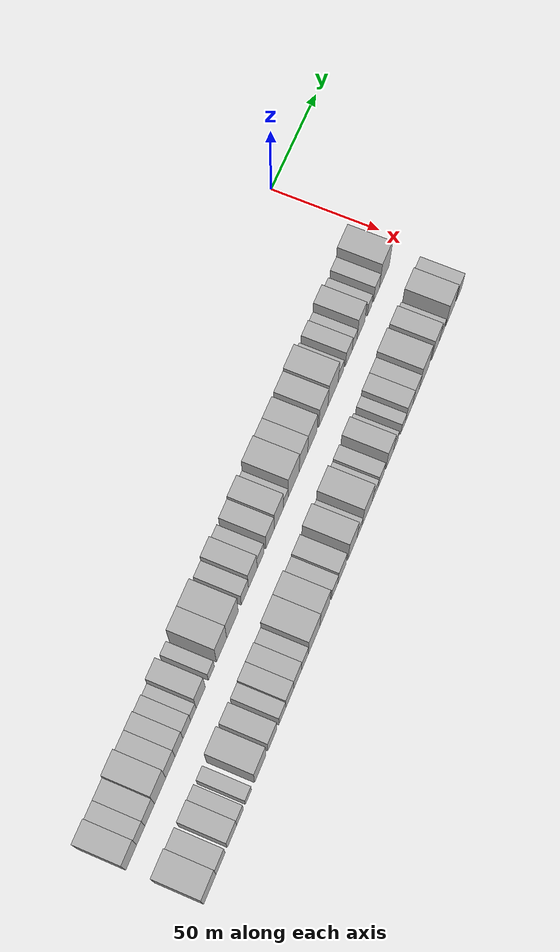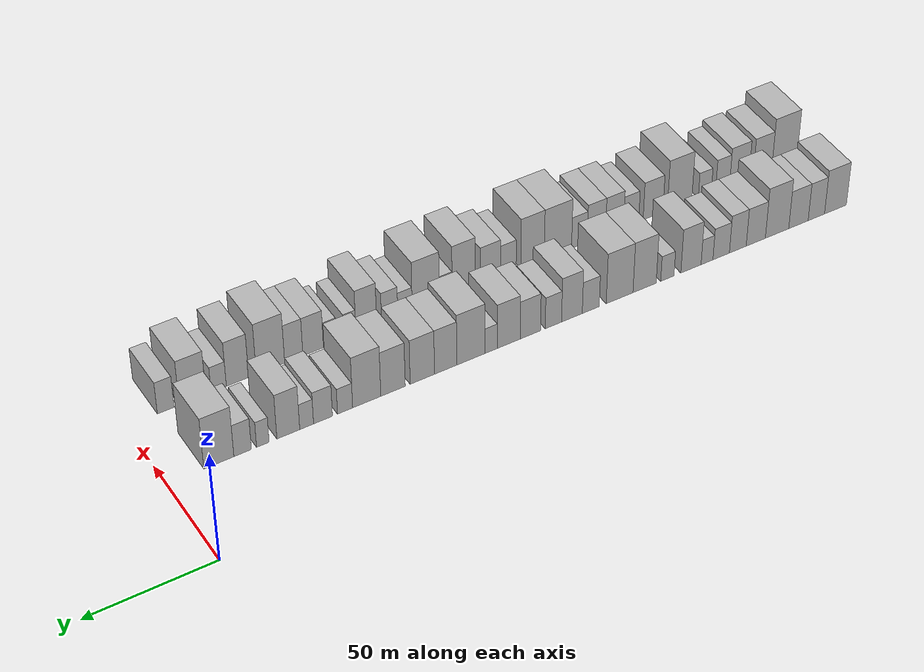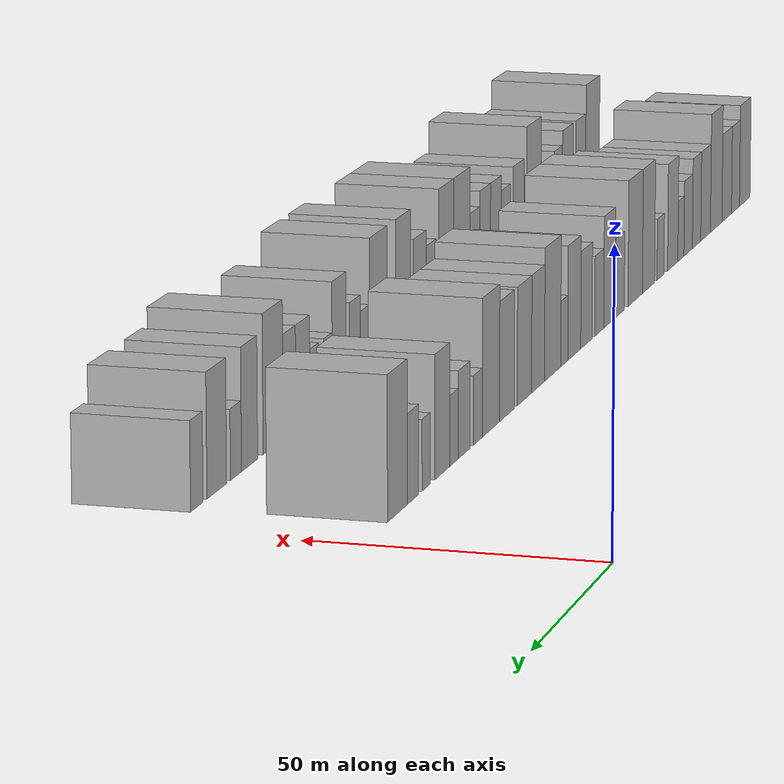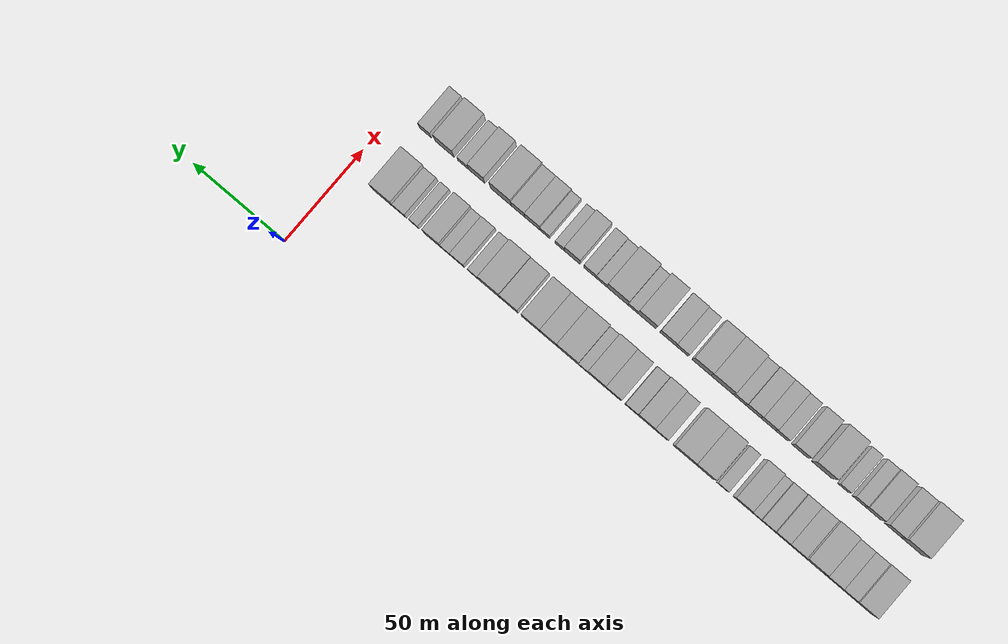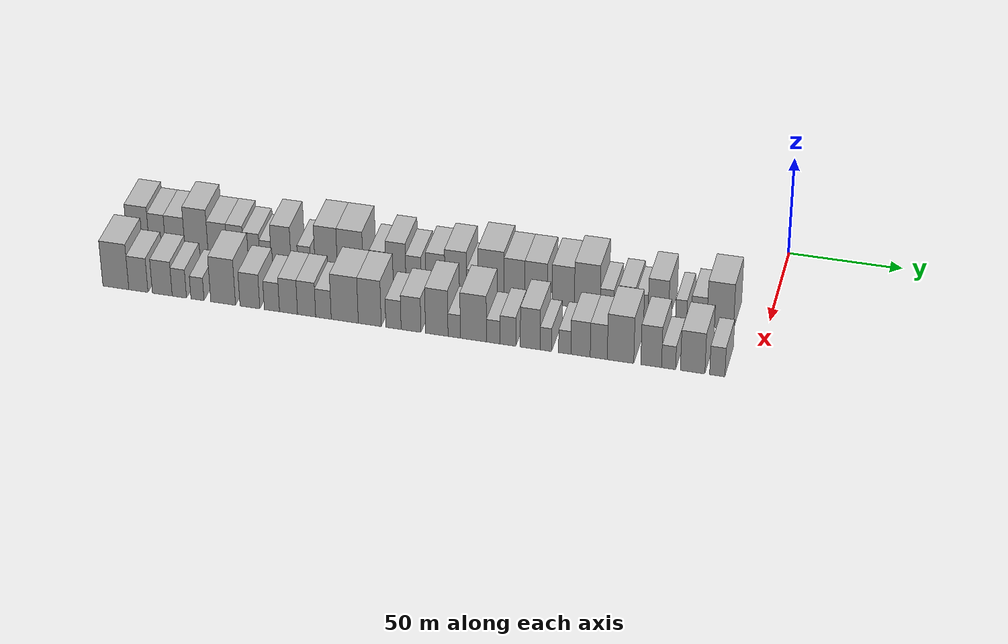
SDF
<sdf version="1.6">
 <world name="default">
  <model name="building_1">
   <static>1</static>
   <pose>50.0000 -278.9319 0 0.000000 0.000000 0.000000</pose>
   <link name="link">
    <pose>0 0 10.50 0 0 0</pose>
    <collision name="collision"><geometry><box><size>20.0000 10.1363 21.0000</size></box></geometry></collision>
    <visual name="visual">
     <cast_shadows>0</cast_shadows>
     <geometry><box><size>20.0000 10.1363 21.0000</size></box></geometry>
     <material>
      <script>
       <uri>model://HANNAS_wall/materials/scripts</uri>
       <uri>model://HANNAS_wall/materials/textures</uri>
       <name>vrc/HANNAS_wall</name>
      </script>
     </material>
    </visual>
   </link>
  </model>
  <model name="building_2">
   <static>1</static>
   <pose>50.0000 -270.0899 0 0.000000 0.000000 0.000000</pose>
   <link name="link">
    <pose>0 0 9.00 0 0 0</pose>
    <collision name="collision"><geometry><box><size>20.0000 7.5476 18.0000</size></box></geometry></collision>
    <visual name="visual">
     <cast_shadows>0</cast_shadows>
     <geometry><box><size>20.0000 7.5476 18.0000</size></box></geometry>
     <material>
      <script>
       <uri>model://HANNAS_wall/materials/scripts</uri>
       <uri>model://HANNAS_wall/materials/textures</uri>
       <name>vrc/HANNAS_wall</name>
      </script>
     </material>
    </visual>
   </link>
  </model>
  <model name="building_3">
   <static>1</static>
   <pose>50.0000 -261.8540 0 0.000000 0.000000 0.000000</pose>
   <link name="link">
    <pose>0 0 9.00 0 0 0</pose>
    <collision name="collision"><geometry><box><size>20.0000 8.9242 18.0000</size></box></geometry></collision>
    <visual name="visual">
     <cast_shadows>0</cast_shadows>
     <geometry><box><size>20.0000 8.9242 18.0000</size></box></geometry>
     <material>
      <script>
       <uri>model://HANNAS_wall/materials/scripts</uri>
       <uri>model://HANNAS_wall/materials/textures</uri>
       <name>vrc/HANNAS_wall</name>
      </script>
     </material>
    </visual>
   </link>
  </model>
  <model name="building_4">
   <static>1</static>
   <pose>50.0000 -252.0789 0 0.000000 0.000000 0.000000</pose>
   <link name="link">
    <pose>0 0 12.00 0 0 0</pose>
    <collision name="collision"><geometry><box><size>20.0000 10.6259 24.0000</size></box></geometry></collision>
    <visual name="visual">
     <cast_shadows>0</cast_shadows>
     <geometry><box><size>20.0000 10.6259 24.0000</size></box></geometry>
     <material>
      <script>
       <uri>model://HANNAS_wall/materials/scripts</uri>
       <uri>model://HANNAS_wall/materials/textures</uri>
       <name>vrc/HANNAS_wall</name>
      </script>
     </material>
    </visual>
   </link>
  </model>
  <model name="building_5">
   <static>1</static>
   <pose>50.0000 -242.4415 0 0.000000 0.000000 0.000000</pose>
   <link name="link">
    <pose>0 0 9.00 0 0 0</pose>
    <collision name="collision"><geometry><box><size>20.0000 8.6490 18.0000</size></box></geometry></collision>
    <visual name="visual">
     <cast_shadows>0</cast_shadows>
     <geometry><box><size>20.0000 8.6490 18.0000</size></box></geometry>
     <material>
      <script>
       <uri>model://HANNAS_wall/materials/scripts</uri>
       <uri>model://HANNAS_wall/materials/textures</uri>
       <name>vrc/HANNAS_wall</name>
      </script>
     </material>
    </visual>
   </link>
  </model>
  <model name="building_6">
   <static>1</static>
   <pose>50.0000 -234.3354 0 0.000000 0.000000 0.000000</pose>
   <link name="link">
    <pose>0 0 9.00 0 0 0</pose>
    <collision name="collision"><geometry><box><size>20.0000 7.5632 18.0000</size></box></geometry></collision>
    <visual name="visual">
     <cast_shadows>0</cast_shadows>
     <geometry><box><size>20.0000 7.5632 18.0000</size></box></geometry>
     <material>
      <script>
       <uri>model://HANNAS_wall/materials/scripts</uri>
       <uri>model://HANNAS_wall/materials/textures</uri>
       <name>vrc/HANNAS_wall</name>
      </script>
     </material>
    </visual>
   </link>
  </model>
  <model name="building_7">
   <static>1</static>
   <pose>50.0000 -226.8695 0 0.000000 0.000000 0.000000</pose>
   <link name="link">
    <pose>0 0 7.50 0 0 0</pose>
    <collision name="collision"><geometry><box><size>20.0000 7.3687 15.0000</size></box></geometry></collision>
    <visual name="visual">
     <cast_shadows>0</cast_shadows>
     <geometry><box><size>20.0000 7.3687 15.0000</size></box></geometry>
     <material>
      <script>
       <uri>model://HANNAS_wall/materials/scripts</uri>
       <uri>model://HANNAS_wall/materials/textures</uri>
       <name>vrc/HANNAS_wall</name>
      </script>
     </material>
    </visual>
   </link>
  </model>
  <model name="building_8">
   <static>1</static>
   <pose>50.0000 -220.5468 0 0.000000 0.000000 0.000000</pose>
   <link name="link">
    <pose>0 0 6.00 0 0 0</pose>
    <collision name="collision"><geometry><box><size>20.0000 5.2767 12.0000</size></box></geometry></collision>
    <visual name="visual">
     <cast_shadows>0</cast_shadows>
     <geometry><box><size>20.0000 5.2767 12.0000</size></box></geometry>
     <material>
      <script>
       <uri>model://HANNAS_wall/materials/scripts</uri>
       <uri>model://HANNAS_wall/materials/textures</uri>
       <name>vrc/HANNAS_wall</name>
      </script>
     </material>
    </visual>
   </link>
  </model>
  <model name="building_9">
   <static>1</static>
   <pose>50.0000 -213.4401 0 0.000000 0.000000 0.000000</pose>
   <link name="link">
    <pose>0 0 10.50 0 0 0</pose>
    <collision name="collision"><geometry><box><size>20.0000 8.9366 21.0000</size></box></geometry></collision>
    <visual name="visual">
     <cast_shadows>0</cast_shadows>
     <geometry><box><size>20.0000 8.9366 21.0000</size></box></geometry>
     <material>
      <script>
       <uri>model://HANNAS_wall/materials/scripts</uri>
       <uri>model://HANNAS_wall/materials/textures</uri>
       <name>vrc/HANNAS_wall</name>
      </script>
     </material>
    </visual>
   </link>
  </model>
  <model name="building_10">
   <static>1</static>
   <pose>50.0000 -203.0445 0 0.000000 0.000000 0.000000</pose>
   <link name="link">
    <pose>0 0 6.00 0 0 0</pose>
    <collision name="collision"><geometry><box><size>20.0000 5.8547 12.0000</size></box></geometry></collision>
    <visual name="visual">
     <cast_shadows>0</cast_shadows>
     <geometry><box><size>20.0000 5.8547 12.0000</size></box></geometry>
     <material>
      <script>
       <uri>model://HANNAS_wall/materials/scripts</uri>
       <uri>model://HANNAS_wall/materials/textures</uri>
       <name>vrc/HANNAS_wall</name>
      </script>
     </material>
    </visual>
   </link>
  </model>
  <model name="building_11">
   <static>1</static>
   <pose>50.0000 -193.0711 0 0.000000 0.000000 0.000000</pose>
   <link name="link">
    <pose>0 0 12.00 0 0 0</pose>
    <collision name="collision"><geometry><box><size>20.0000 10.0920 24.0000</size></box></geometry></collision>
    <visual name="visual">
     <cast_shadows>0</cast_shadows>
     <geometry><box><size>20.0000 10.0920 24.0000</size></box></geometry>
     <material>
      <script>
       <uri>model://HANNAS_wall/materials/scripts</uri>
       <uri>model://HANNAS_wall/materials/textures</uri>
       <name>vrc/HANNAS_wall</name>
      </script>
     </material>
    </visual>
   </link>
  </model>
  <model name="building_12">
   <static>1</static>
   <pose>50.0000 -182.2278 0 0.000000 0.000000 0.000000</pose>
   <link name="link">
    <pose>0 0 12.00 0 0 0</pose>
    <collision name="collision"><geometry><box><size>20.0000 11.5945 24.0000</size></box></geometry></collision>
    <visual name="visual">
     <cast_shadows>0</cast_shadows>
     <geometry><box><size>20.0000 11.5945 24.0000</size></box></geometry>
     <material>
      <script>
       <uri>model://HANNAS_wall/materials/scripts</uri>
       <uri>model://HANNAS_wall/materials/textures</uri>
       <name>vrc/HANNAS_wall</name>
      </script>
     </material>
    </visual>
   </link>
  </model>
  <model name="building_13">
   <static>1</static>
   <pose>50.0000 -169.8044 0 0.000000 0.000000 0.000000</pose>
   <link name="link">
    <pose>0 0 7.50 0 0 0</pose>
    <collision name="collision"><geometry><box><size>20.0000 7.2523 15.0000</size></box></geometry></collision>
    <visual name="visual">
     <cast_shadows>0</cast_shadows>
     <geometry><box><size>20.0000 7.2523 15.0000</size></box></geometry>
     <material>
      <script>
       <uri>model://HANNAS_wall/materials/scripts</uri>
       <uri>model://HANNAS_wall/materials/textures</uri>
       <name>vrc/HANNAS_wall</name>
      </script>
     </material>
    </visual>
   </link>
  </model>
  <model name="building_14">
   <static>1</static>
   <pose>50.0000 -161.7620 0 0.000000 0.000000 0.000000</pose>
   <link name="link">
    <pose>0 0 10.50 0 0 0</pose>
    <collision name="collision"><geometry><box><size>20.0000 8.8325 21.0000</size></box></geometry></collision>
    <visual name="visual">
     <cast_shadows>0</cast_shadows>
     <geometry><box><size>20.0000 8.8325 21.0000</size></box></geometry>
     <material>
      <script>
       <uri>model://HANNAS_wall/materials/scripts</uri>
       <uri>model://HANNAS_wall/materials/textures</uri>
       <name>vrc/HANNAS_wall</name>
      </script>
     </material>
    </visual>
   </link>
  </model>
  <model name="building_15">
   <static>1</static>
   <pose>50.0000 -153.9001 0 0.000000 0.000000 0.000000</pose>
   <link name="link">
    <pose>0 0 7.50 0 0 0</pose>
    <collision name="collision"><geometry><box><size>20.0000 6.8913 15.0000</size></box></geometry></collision>
    <visual name="visual">
     <cast_shadows>0</cast_shadows>
     <geometry><box><size>20.0000 6.8913 15.0000</size></box></geometry>
     <material>
      <script>
       <uri>model://HANNAS_wall/materials/scripts</uri>
       <uri>model://HANNAS_wall/materials/textures</uri>
       <name>vrc/HANNAS_wall</name>
      </script>
     </material>
    </visual>
   </link>
  </model>
  <model name="building_16">
   <static>1</static>
   <pose>50.0000 -144.1862 0 0.000000 0.000000 0.000000</pose>
   <link name="link">
    <pose>0 0 9.00 0 0 0</pose>
    <collision name="collision"><geometry><box><size>20.0000 8.5365 18.0000</size></box></geometry></collision>
    <visual name="visual">
     <cast_shadows>0</cast_shadows>
     <geometry><box><size>20.0000 8.5365 18.0000</size></box></geometry>
     <material>
      <script>
       <uri>model://HANNAS_wall/materials/scripts</uri>
       <uri>model://HANNAS_wall/materials/textures</uri>
       <name>vrc/HANNAS_wall</name>
      </script>
     </material>
    </visual>
   </link>
  </model>
  <model name="building_17">
   <static>1</static>
   <pose>50.0000 -135.1311 0 0.000000 0.000000 0.000000</pose>
   <link name="link">
    <pose>0 0 10.50 0 0 0</pose>
    <collision name="collision"><geometry><box><size>20.0000 9.5737 21.0000</size></box></geometry></collision>
    <visual name="visual">
     <cast_shadows>0</cast_shadows>
     <geometry><box><size>20.0000 9.5737 21.0000</size></box></geometry>
     <material>
      <script>
       <uri>model://HANNAS_wall/materials/scripts</uri>
       <uri>model://HANNAS_wall/materials/textures</uri>
       <name>vrc/HANNAS_wall</name>
      </script>
     </material>
    </visual>
   </link>
  </model>
  <model name="building_18">
   <static>1</static>
   <pose>50.0000 -127.8326 0 0.000000 0.000000 0.000000</pose>
   <link name="link">
    <pose>0 0 6.00 0 0 0</pose>
    <collision name="collision"><geometry><box><size>20.0000 5.0233 12.0000</size></box></geometry></collision>
    <visual name="visual">
     <cast_shadows>0</cast_shadows>
     <geometry><box><size>20.0000 5.0233 12.0000</size></box></geometry>
     <material>
      <script>
       <uri>model://HANNAS_wall/materials/scripts</uri>
       <uri>model://HANNAS_wall/materials/textures</uri>
       <name>vrc/HANNAS_wall</name>
      </script>
     </material>
    </visual>
   </link>
  </model>
  <model name="building_19">
   <static>1</static>
   <pose>50.0000 -119.4954 0 0.000000 0.000000 0.000000</pose>
   <link name="link">
    <pose>0 0 12.00 0 0 0</pose>
    <collision name="collision"><geometry><box><size>20.0000 11.6512 24.0000</size></box></geometry></collision>
    <visual name="visual">
     <cast_shadows>0</cast_shadows>
     <geometry><box><size>20.0000 11.6512 24.0000</size></box></geometry>
     <material>
      <script>
       <uri>model://HANNAS_wall/materials/scripts</uri>
       <uri>model://HANNAS_wall/materials/textures</uri>
       <name>vrc/HANNAS_wall</name>
      </script>
     </material>
    </visual>
   </link>
  </model>
  <model name="building_20">
   <static>1</static>
   <pose>50.0000 -109.1221 0 0.000000 0.000000 0.000000</pose>
   <link name="link">
    <pose>0 0 10.50 0 0 0</pose>
    <collision name="collision"><geometry><box><size>20.0000 9.0954 21.0000</size></box></geometry></collision>
    <visual name="visual">
     <cast_shadows>0</cast_shadows>
     <geometry><box><size>20.0000 9.0954 21.0000</size></box></geometry>
     <material>
      <script>
       <uri>model://HANNAS_wall/materials/scripts</uri>
       <uri>model://HANNAS_wall/materials/textures</uri>
       <name>vrc/HANNAS_wall</name>
      </script>
     </material>
    </visual>
   </link>
  </model>
  <model name="building_21">
   <static>1</static>
   <pose>50.0000 -99.6407 0 0.000000 0.000000 0.000000</pose>
   <link name="link">
    <pose>0 0 10.50 0 0 0</pose>
    <collision name="collision"><geometry><box><size>20.0000 9.8675 21.0000</size></box></geometry></collision>
    <visual name="visual">
     <cast_shadows>0</cast_shadows>
     <geometry><box><size>20.0000 9.8675 21.0000</size></box></geometry>
     <material>
      <script>
       <uri>model://HANNAS_wall/materials/scripts</uri>
       <uri>model://HANNAS_wall/materials/textures</uri>
       <name>vrc/HANNAS_wall</name>
      </script>
     </material>
    </visual>
   </link>
  </model>
  <model name="building_22">
   <static>1</static>
   <pose>50.0000 -87.7980 0 0.000000 0.000000 0.000000</pose>
   <link name="link">
    <pose>0 0 10.50 0 0 0</pose>
    <collision name="collision"><geometry><box><size>20.0000 9.8178 21.0000</size></box></geometry></collision>
    <visual name="visual">
     <cast_shadows>0</cast_shadows>
     <geometry><box><size>20.0000 9.8178 21.0000</size></box></geometry>
     <material>
      <script>
       <uri>model://HANNAS_wall/materials/scripts</uri>
       <uri>model://HANNAS_wall/materials/textures</uri>
       <name>vrc/HANNAS_wall</name>
      </script>
     </material>
    </visual>
   </link>
  </model>
  <model name="building_23">
   <static>1</static>
   <pose>50.0000 -77.2852 0 0.000000 0.000000 0.000000</pose>
   <link name="link">
    <pose>0 0 12.00 0 0 0</pose>
    <collision name="collision"><geometry><box><size>20.0000 11.2078 24.0000</size></box></geometry></collision>
    <visual name="visual">
     <cast_shadows>0</cast_shadows>
     <geometry><box><size>20.0000 11.2078 24.0000</size></box></geometry>
     <material>
      <script>
       <uri>model://HANNAS_wall/materials/scripts</uri>
       <uri>model://HANNAS_wall/materials/textures</uri>
       <name>vrc/HANNAS_wall</name>
      </script>
     </material>
    </visual>
   </link>
  </model>
  <model name="building_24">
   <static>1</static>
   <pose>50.0000 -68.6890 0 0.000000 0.000000 0.000000</pose>
   <link name="link">
    <pose>0 0 6.00 0 0 0</pose>
    <collision name="collision"><geometry><box><size>20.0000 5.9847 12.0000</size></box></geometry></collision>
    <visual name="visual">
     <cast_shadows>0</cast_shadows>
     <geometry><box><size>20.0000 5.9847 12.0000</size></box></geometry>
     <material>
      <script>
       <uri>model://HANNAS_wall/materials/scripts</uri>
       <uri>model://HANNAS_wall/materials/textures</uri>
       <name>vrc/HANNAS_wall</name>
      </script>
     </material>
    </visual>
   </link>
  </model>
  <model name="building_25">
   <static>1</static>
   <pose>50.0000 -59.9812 0 0.000000 0.000000 0.000000</pose>
   <link name="link">
    <pose>0 0 7.50 0 0 0</pose>
    <collision name="collision"><geometry><box><size>20.0000 7.4309 15.0000</size></box></geometry></collision>
    <visual name="visual">
     <cast_shadows>0</cast_shadows>
     <geometry><box><size>20.0000 7.4309 15.0000</size></box></geometry>
     <material>
      <script>
       <uri>model://HANNAS_wall/materials/scripts</uri>
       <uri>model://HANNAS_wall/materials/textures</uri>
       <name>vrc/HANNAS_wall</name>
      </script>
     </material>
    </visual>
   </link>
  </model>
  <model name="building_26">
   <static>1</static>
   <pose>50.0000 -53.5605 0 0.000000 0.000000 0.000000</pose>
   <link name="link">
    <pose>0 0 6.00 0 0 0</pose>
    <collision name="collision"><geometry><box><size>20.0000 5.4105 12.0000</size></box></geometry></collision>
    <visual name="visual">
     <cast_shadows>0</cast_shadows>
     <geometry><box><size>20.0000 5.4105 12.0000</size></box></geometry>
     <material>
      <script>
       <uri>model://HANNAS_wall/materials/scripts</uri>
       <uri>model://HANNAS_wall/materials/textures</uri>
       <name>vrc/HANNAS_wall</name>
      </script>
     </material>
    </visual>
   </link>
  </model>
  <model name="building_27">
   <static>1</static>
   <pose>50.0000 -46.4148 0 0.000000 0.000000 0.000000</pose>
   <link name="link">
    <pose>0 0 10.50 0 0 0</pose>
    <collision name="collision"><geometry><box><size>20.0000 8.8810 21.0000</size></box></geometry></collision>
    <visual name="visual">
     <cast_shadows>0</cast_shadows>
     <geometry><box><size>20.0000 8.8810 21.0000</size></box></geometry>
     <material>
      <script>
       <uri>model://HANNAS_wall/materials/scripts</uri>
       <uri>model://HANNAS_wall/materials/textures</uri>
       <name>vrc/HANNAS_wall</name>
      </script>
     </material>
    </visual>
   </link>
  </model>
  <model name="building_28">
   <static>1</static>
   <pose>50.0000 -36.5562 0 0.000000 0.000000 0.000000</pose>
   <link name="link">
    <pose>0 0 6.00 0 0 0</pose>
    <collision name="collision"><geometry><box><size>20.0000 4.8362 12.0000</size></box></geometry></collision>
    <visual name="visual">
     <cast_shadows>0</cast_shadows>
     <geometry><box><size>20.0000 4.8362 12.0000</size></box></geometry>
     <material>
      <script>
       <uri>model://HANNAS_wall/materials/scripts</uri>
       <uri>model://HANNAS_wall/materials/textures</uri>
       <name>vrc/HANNAS_wall</name>
      </script>
     </material>
    </visual>
   </link>
  </model>
  <model name="building_29">
   <static>1</static>
   <pose>50.0000 -28.7875 0 0.000000 0.000000 0.000000</pose>
   <link name="link">
    <pose>0 0 7.50 0 0 0</pose>
    <collision name="collision"><geometry><box><size>20.0000 6.7012 15.0000</size></box></geometry></collision>
    <visual name="visual">
     <cast_shadows>0</cast_shadows>
     <geometry><box><size>20.0000 6.7012 15.0000</size></box></geometry>
     <material>
      <script>
       <uri>model://HANNAS_wall/materials/scripts</uri>
       <uri>model://HANNAS_wall/materials/textures</uri>
       <name>vrc/HANNAS_wall</name>
      </script>
     </material>
    </visual>
   </link>
  </model>
  <model name="building_30">
   <static>1</static>
   <pose>50.0000 -19.7157 0 0.000000 0.000000 0.000000</pose>
   <link name="link">
    <pose>0 0 12.00 0 0 0</pose>
    <collision name="collision"><geometry><box><size>20.0000 11.4425 24.0000</size></box></geometry></collision>
    <visual name="visual">
     <cast_shadows>0</cast_shadows>
     <geometry><box><size>20.0000 11.4425 24.0000</size></box></geometry>
     <material>
      <script>
       <uri>model://HANNAS_wall/materials/scripts</uri>
       <uri>model://HANNAS_wall/materials/textures</uri>
       <name>vrc/HANNAS_wall</name>
      </script>
     </material>
    </visual>
   </link>
  </model>
  <model name="building_60">
   <static>1</static>
   <pose>82.0000 -278.1218 0 0.000000 0.000000 0.000000</pose>
   <link name="link">
    <pose>0 0 12.00 0 0 0</pose>
    <collision name="collision"><geometry><box><size>20.0000 11.7565 24.0000</size></box></geometry></collision>
    <visual name="visual">
     <cast_shadows>0</cast_shadows>
     <geometry><box><size>20.0000 11.7565 24.0000</size></box></geometry>
     <material>
      <script>
       <uri>model://HANNAS_wall/materials/scripts</uri>
       <uri>model://HANNAS_wall/materials/textures</uri>
       <name>vrc/HANNAS_wall</name>
      </script>
     </material>
    </visual>
   </link>
  </model>
  <model name="building_61">
   <static>1</static>
   <pose>82.0000 -267.9045 0 0.000000 0.000000 0.000000</pose>
   <link name="link">
    <pose>0 0 9.00 0 0 0</pose>
    <collision name="collision"><geometry><box><size>20.0000 8.6781 18.0000</size></box></geometry></collision>
    <visual name="visual">
     <cast_shadows>0</cast_shadows>
     <geometry><box><size>20.0000 8.6781 18.0000</size></box></geometry>
     <material>
      <script>
       <uri>model://HANNAS_wall/materials/scripts</uri>
       <uri>model://HANNAS_wall/materials/textures</uri>
       <name>vrc/HANNAS_wall</name>
      </script>
     </material>
    </visual>
   </link>
  </model>
  <model name="building_62">
   <static>1</static>
   <pose>82.0000 -257.1049 0 0.000000 0.000000 0.000000</pose>
   <link name="link">
    <pose>0 0 9.00 0 0 0</pose>
    <collision name="collision"><geometry><box><size>20.0000 8.9211 18.0000</size></box></geometry></collision>
    <visual name="visual">
     <cast_shadows>0</cast_shadows>
     <geometry><box><size>20.0000 8.9211 18.0000</size></box></geometry>
     <material>
      <script>
       <uri>model://HANNAS_wall/materials/scripts</uri>
       <uri>model://HANNAS_wall/materials/textures</uri>
       <name>vrc/HANNAS_wall</name>
      </script>
     </material>
    </visual>
   </link>
  </model>
  <model name="building_63">
   <static>1</static>
   <pose>82.0000 -249.4211 0 0.000000 0.000000 0.000000</pose>
   <link name="link">
    <pose>0 0 7.50 0 0 0</pose>
    <collision name="collision"><geometry><box><size>20.0000 6.4465 15.0000</size></box></geometry></collision>
    <visual name="visual">
     <cast_shadows>0</cast_shadows>
     <geometry><box><size>20.0000 6.4465 15.0000</size></box></geometry>
     <material>
      <script>
       <uri>model://HANNAS_wall/materials/scripts</uri>
       <uri>model://HANNAS_wall/materials/textures</uri>
       <name>vrc/HANNAS_wall</name>
      </script>
     </material>
    </visual>
   </link>
  </model>
  <model name="building_64">
   <static>1</static>
   <pose>82.0000 -241.2479 0 0.000000 0.000000 0.000000</pose>
   <link name="link">
    <pose>0 0 6.00 0 0 0</pose>
    <collision name="collision"><geometry><box><size>20.0000 5.8999 12.0000</size></box></geometry></collision>
    <visual name="visual">
     <cast_shadows>0</cast_shadows>
     <geometry><box><size>20.0000 5.8999 12.0000</size></box></geometry>
     <material>
      <script>
       <uri>model://HANNAS_wall/materials/scripts</uri>
       <uri>model://HANNAS_wall/materials/textures</uri>
       <name>vrc/HANNAS_wall</name>
      </script>
     </material>
    </visual>
   </link>
  </model>
  <model name="building_65">
   <static>1</static>
   <pose>82.0000 -229.7522 0 0.000000 0.000000 0.000000</pose>
   <link name="link">
    <pose>0 0 12.00 0 0 0</pose>
    <collision name="collision"><geometry><box><size>20.0000 11.0914 24.0000</size></box></geometry></collision>
    <visual name="visual">
     <cast_shadows>0</cast_shadows>
     <geometry><box><size>20.0000 11.0914 24.0000</size></box></geometry>
     <material>
      <script>
       <uri>model://HANNAS_wall/materials/scripts</uri>
       <uri>model://HANNAS_wall/materials/textures</uri>
       <name>vrc/HANNAS_wall</name>
      </script>
     </material>
    </visual>
   </link>
  </model>
  <model name="building_66">
   <static>1</static>
   <pose>82.0000 -217.7758 0 0.000000 0.000000 0.000000</pose>
   <link name="link">
    <pose>0 0 9.00 0 0 0</pose>
    <collision name="collision"><geometry><box><size>20.0000 8.8615 18.0000</size></box></geometry></collision>
    <visual name="visual">
     <cast_shadows>0</cast_shadows>
     <geometry><box><size>20.0000 8.8615 18.0000</size></box></geometry>
     <material>
      <script>
       <uri>model://HANNAS_wall/materials/scripts</uri>
       <uri>model://HANNAS_wall/materials/textures</uri>
       <name>vrc/HANNAS_wall</name>
      </script>
     </material>
    </visual>
   </link>
  </model>
  <model name="building_67">
   <static>1</static>
   <pose>82.0000 -207.9640 0 0.000000 0.000000 0.000000</pose>
   <link name="link">
    <pose>0 0 7.50 0 0 0</pose>
    <collision name="collision"><geometry><box><size>20.0000 6.7620 15.0000</size></box></geometry></collision>
    <visual name="visual">
     <cast_shadows>0</cast_shadows>
     <geometry><box><size>20.0000 6.7620 15.0000</size></box></geometry>
     <material>
      <script>
       <uri>model://HANNAS_wall/materials/scripts</uri>
       <uri>model://HANNAS_wall/materials/textures</uri>
       <name>vrc/HANNAS_wall</name>
      </script>
     </material>
    </visual>
   </link>
  </model>
  <model name="building_68">
   <static>1</static>
   <pose>82.0000 -200.5835 0 0.000000 0.000000 0.000000</pose>
   <link name="link">
    <pose>0 0 9.00 0 0 0</pose>
    <collision name="collision"><geometry><box><size>20.0000 7.9990 18.0000</size></box></geometry></collision>
    <visual name="visual">
     <cast_shadows>0</cast_shadows>
     <geometry><box><size>20.0000 7.9990 18.0000</size></box></geometry>
     <material>
      <script>
       <uri>model://HANNAS_wall/materials/scripts</uri>
       <uri>model://HANNAS_wall/materials/textures</uri>
       <name>vrc/HANNAS_wall</name>
      </script>
     </material>
    </visual>
   </link>
  </model>
  <model name="building_69">
   <static>1</static>
   <pose>82.0000 -192.5527 0 0.000000 0.000000 0.000000</pose>
   <link name="link">
    <pose>0 0 9.00 0 0 0</pose>
    <collision name="collision"><geometry><box><size>20.0000 8.0625 18.0000</size></box></geometry></collision>
    <visual name="visual">
     <cast_shadows>0</cast_shadows>
     <geometry><box><size>20.0000 8.0625 18.0000</size></box></geometry>
     <material>
      <script>
       <uri>model://HANNAS_wall/materials/scripts</uri>
       <uri>model://HANNAS_wall/materials/textures</uri>
       <name>vrc/HANNAS_wall</name>
      </script>
     </material>
    </visual>
   </link>
  </model>
  <model name="building_70">
   <static>1</static>
   <pose>82.0000 -185.0785 0 0.000000 0.000000 0.000000</pose>
   <link name="link">
    <pose>0 0 7.50 0 0 0</pose>
    <collision name="collision"><geometry><box><size>20.0000 6.8859 15.0000</size></box></geometry></collision>
    <visual name="visual">
     <cast_shadows>0</cast_shadows>
     <geometry><box><size>20.0000 6.8859 15.0000</size></box></geometry>
     <material>
      <script>
       <uri>model://HANNAS_wall/materials/scripts</uri>
       <uri>model://HANNAS_wall/materials/textures</uri>
       <name>vrc/HANNAS_wall</name>
      </script>
     </material>
    </visual>
   </link>
  </model>
  <model name="building_71">
   <static>1</static>
   <pose>82.0000 -175.6701 0 0.000000 0.000000 0.000000</pose>
   <link name="link">
    <pose>0 0 12.00 0 0 0</pose>
    <collision name="collision"><geometry><box><size>20.0000 11.9309 24.0000</size></box></geometry></collision>
    <visual name="visual">
     <cast_shadows>0</cast_shadows>
     <geometry><box><size>20.0000 11.9309 24.0000</size></box></geometry>
     <material>
      <script>
       <uri>model://HANNAS_wall/materials/scripts</uri>
       <uri>model://HANNAS_wall/materials/textures</uri>
       <name>vrc/HANNAS_wall</name>
      </script>
     </material>
    </visual>
   </link>
  </model>
  <model name="building_72">
   <static>1</static>
   <pose>82.0000 -164.6478 0 0.000000 0.000000 0.000000</pose>
   <link name="link">
    <pose>0 0 12.00 0 0 0</pose>
    <collision name="collision"><geometry><box><size>20.0000 10.1138 24.0000</size></box></geometry></collision>
    <visual name="visual">
     <cast_shadows>0</cast_shadows>
     <geometry><box><size>20.0000 10.1138 24.0000</size></box></geometry>
     <material>
      <script>
       <uri>model://HANNAS_wall/materials/scripts</uri>
       <uri>model://HANNAS_wall/materials/textures</uri>
       <name>vrc/HANNAS_wall</name>
      </script>
     </material>
    </visual>
   </link>
  </model>
  <model name="building_73">
   <static>1</static>
   <pose>82.0000 -154.2439 0 0.000000 0.000000 0.000000</pose>
   <link name="link">
    <pose>0 0 7.50 0 0 0</pose>
    <collision name="collision"><geometry><box><size>20.0000 6.6939 15.0000</size></box></geometry></collision>
    <visual name="visual">
     <cast_shadows>0</cast_shadows>
     <geometry><box><size>20.0000 6.6939 15.0000</size></box></geometry>
     <material>
      <script>
       <uri>model://HANNAS_wall/materials/scripts</uri>
       <uri>model://HANNAS_wall/materials/textures</uri>
       <name>vrc/HANNAS_wall</name>
      </script>
     </material>
    </visual>
   </link>
  </model>
  <model name="building_74">
   <static>1</static>
   <pose>82.0000 -146.5614 0 0.000000 0.000000 0.000000</pose>
   <link name="link">
    <pose>0 0 9.00 0 0 0</pose>
    <collision name="collision"><geometry><box><size>20.0000 8.6710 18.0000</size></box></geometry></collision>
    <visual name="visual">
     <cast_shadows>0</cast_shadows>
     <geometry><box><size>20.0000 8.6710 18.0000</size></box></geometry>
     <material>
      <script>
       <uri>model://HANNAS_wall/materials/scripts</uri>
       <uri>model://HANNAS_wall/materials/textures</uri>
       <name>vrc/HANNAS_wall</name>
      </script>
     </material>
    </visual>
   </link>
  </model>
  <model name="building_75">
   <static>1</static>
   <pose>82.0000 -135.3176 0 0.000000 0.000000 0.000000</pose>
   <link name="link">
    <pose>0 0 12.00 0 0 0</pose>
    <collision name="collision"><geometry><box><size>20.0000 9.8166 24.0000</size></box></geometry></collision>
    <visual name="visual">
     <cast_shadows>0</cast_shadows>
     <geometry><box><size>20.0000 9.8166 24.0000</size></box></geometry>
     <material>
      <script>
       <uri>model://HANNAS_wall/materials/scripts</uri>
       <uri>model://HANNAS_wall/materials/textures</uri>
       <name>vrc/HANNAS_wall</name>
      </script>
     </material>
    </visual>
   </link>
  </model>
  <model name="building_76">
   <static>1</static>
   <pose>82.0000 -127.7190 0 0.000000 0.000000 0.000000</pose>
   <link name="link">
    <pose>0 0 6.00 0 0 0</pose>
    <collision name="collision"><geometry><box><size>20.0000 5.3807 12.0000</size></box></geometry></collision>
    <visual name="visual">
     <cast_shadows>0</cast_shadows>
     <geometry><box><size>20.0000 5.3807 12.0000</size></box></geometry>
     <material>
      <script>
       <uri>model://HANNAS_wall/materials/scripts</uri>
       <uri>model://HANNAS_wall/materials/textures</uri>
       <name>vrc/HANNAS_wall</name>
      </script>
     </material>
    </visual>
   </link>
  </model>
  <model name="building_77">
   <static>1</static>
   <pose>82.0000 -119.3712 0 0.000000 0.000000 0.000000</pose>
   <link name="link">
    <pose>0 0 12.00 0 0 0</pose>
    <collision name="collision"><geometry><box><size>20.0000 11.3148 24.0000</size></box></geometry></collision>
    <visual name="visual">
     <cast_shadows>0</cast_shadows>
     <geometry><box><size>20.0000 11.3148 24.0000</size></box></geometry>
     <material>
      <script>
       <uri>model://HANNAS_wall/materials/scripts</uri>
       <uri>model://HANNAS_wall/materials/textures</uri>
       <name>vrc/HANNAS_wall</name>
      </script>
     </material>
    </visual>
   </link>
  </model>
  <model name="building_78">
   <static>1</static>
   <pose>82.0000 -110.7311 0 0.000000 0.000000 0.000000</pose>
   <link name="link">
    <pose>0 0 6.00 0 0 0</pose>
    <collision name="collision"><geometry><box><size>20.0000 5.9654 12.0000</size></box></geometry></collision>
    <visual name="visual">
     <cast_shadows>0</cast_shadows>
     <geometry><box><size>20.0000 5.9654 12.0000</size></box></geometry>
     <material>
      <script>
       <uri>model://HANNAS_wall/materials/scripts</uri>
       <uri>model://HANNAS_wall/materials/textures</uri>
       <name>vrc/HANNAS_wall</name>
      </script>
     </material>
    </visual>
   </link>
  </model>
  <model name="building_79">
   <static>1</static>
   <pose>82.0000 -104.3885 0 0.000000 0.000000 0.000000</pose>
   <link name="link">
    <pose>0 0 7.50 0 0 0</pose>
    <collision name="collision"><geometry><box><size>20.0000 6.7198 15.0000</size></box></geometry></collision>
    <visual name="visual">
     <cast_shadows>0</cast_shadows>
     <geometry><box><size>20.0000 6.7198 15.0000</size></box></geometry>
     <material>
      <script>
       <uri>model://HANNAS_wall/materials/scripts</uri>
       <uri>model://HANNAS_wall/materials/textures</uri>
       <name>vrc/HANNAS_wall</name>
      </script>
     </material>
    </visual>
   </link>
  </model>
  <model name="building_80">
   <static>1</static>
   <pose>82.0000 -94.7712 0 0.000000 0.000000 0.000000</pose>
   <link name="link">
    <pose>0 0 10.50 0 0 0</pose>
    <collision name="collision"><geometry><box><size>20.0000 8.5149 21.0000</size></box></geometry></collision>
    <visual name="visual">
     <cast_shadows>0</cast_shadows>
     <geometry><box><size>20.0000 8.5149 21.0000</size></box></geometry>
     <material>
      <script>
       <uri>model://HANNAS_wall/materials/scripts</uri>
       <uri>model://HANNAS_wall/materials/textures</uri>
       <name>vrc/HANNAS_wall</name>
      </script>
     </material>
    </visual>
   </link>
  </model>
  <model name="building_81">
   <static>1</static>
   <pose>82.0000 -88.0511 0 0.000000 0.000000 0.000000</pose>
   <link name="link">
    <pose>0 0 6.00 0 0 0</pose>
    <collision name="collision"><geometry><box><size>20.0000 4.9253 12.0000</size></box></geometry></collision>
    <visual name="visual">
     <cast_shadows>0</cast_shadows>
     <geometry><box><size>20.0000 4.9253 12.0000</size></box></geometry>
     <material>
      <script>
       <uri>model://HANNAS_wall/materials/scripts</uri>
       <uri>model://HANNAS_wall/materials/textures</uri>
       <name>vrc/HANNAS_wall</name>
      </script>
     </material>
    </visual>
   </link>
  </model>
  <model name="building_82">
   <static>1</static>
   <pose>82.0000 -79.9479 0 0.000000 0.000000 0.000000</pose>
   <link name="link">
    <pose>0 0 6.00 0 0 0</pose>
    <collision name="collision"><geometry><box><size>20.0000 5.2811 12.0000</size></box></geometry></collision>
    <visual name="visual">
     <cast_shadows>0</cast_shadows>
     <geometry><box><size>20.0000 5.2811 12.0000</size></box></geometry>
     <material>
      <script>
       <uri>model://HANNAS_wall/materials/scripts</uri>
       <uri>model://HANNAS_wall/materials/textures</uri>
       <name>vrc/HANNAS_wall</name>
      </script>
     </material>
    </visual>
   </link>
  </model>
  <model name="building_83">
   <static>1</static>
   <pose>82.0000 -73.1731 0 0.000000 0.000000 0.000000</pose>
   <link name="link">
    <pose>0 0 9.00 0 0 0</pose>
    <collision name="collision"><geometry><box><size>20.0000 8.2685 18.0000</size></box></geometry></collision>
    <visual name="visual">
     <cast_shadows>0</cast_shadows>
     <geometry><box><size>20.0000 8.2685 18.0000</size></box></geometry>
     <material>
      <script>
       <uri>model://HANNAS_wall/materials/scripts</uri>
       <uri>model://HANNAS_wall/materials/textures</uri>
       <name>vrc/HANNAS_wall</name>
      </script>
     </material>
    </visual>
   </link>
  </model>
  <model name="building_84">
   <static>1</static>
   <pose>82.0000 -65.3909 0 0.000000 0.000000 0.000000</pose>
   <link name="link">
    <pose>0 0 9.00 0 0 0</pose>
    <collision name="collision"><geometry><box><size>20.0000 7.2960 18.0000</size></box></geometry></collision>
    <visual name="visual">
     <cast_shadows>0</cast_shadows>
     <geometry><box><size>20.0000 7.2960 18.0000</size></box></geometry>
     <material>
      <script>
       <uri>model://HANNAS_wall/materials/scripts</uri>
       <uri>model://HANNAS_wall/materials/textures</uri>
       <name>vrc/HANNAS_wall</name>
      </script>
     </material>
    </visual>
   </link>
  </model>
  <model name="building_85">
   <static>1</static>
   <pose>82.0000 -56.0980 0 0.000000 0.000000 0.000000</pose>
   <link name="link">
    <pose>0 0 12.00 0 0 0</pose>
    <collision name="collision"><geometry><box><size>20.0000 11.2897 24.0000</size></box></geometry></collision>
    <visual name="visual">
     <cast_shadows>0</cast_shadows>
     <geometry><box><size>20.0000 11.2897 24.0000</size></box></geometry>
     <material>
      <script>
       <uri>model://HANNAS_wall/materials/scripts</uri>
       <uri>model://HANNAS_wall/materials/textures</uri>
       <name>vrc/HANNAS_wall</name>
      </script>
     </material>
    </visual>
   </link>
  </model>
  <model name="building_86">
   <static>1</static>
   <pose>82.0000 -43.0546 0 0.000000 0.000000 0.000000</pose>
   <link name="link">
    <pose>0 0 10.50 0 0 0</pose>
    <collision name="collision"><geometry><box><size>20.0000 8.7971 21.0000</size></box></geometry></collision>
    <visual name="visual">
     <cast_shadows>0</cast_shadows>
     <geometry><box><size>20.0000 8.7971 21.0000</size></box></geometry>
     <material>
      <script>
       <uri>model://HANNAS_wall/materials/scripts</uri>
       <uri>model://HANNAS_wall/materials/textures</uri>
       <name>vrc/HANNAS_wall</name>
      </script>
     </material>
    </visual>
   </link>
  </model>
  <model name="building_87">
   <static>1</static>
   <pose>82.0000 -35.6611 0 0.000000 0.000000 0.000000</pose>
   <link name="link">
    <pose>0 0 6.00 0 0 0</pose>
    <collision name="collision"><geometry><box><size>20.0000 5.9900 12.0000</size></box></geometry></collision>
    <visual name="visual">
     <cast_shadows>0</cast_shadows>
     <geometry><box><size>20.0000 5.9900 12.0000</size></box></geometry>
     <material>
      <script>
       <uri>model://HANNAS_wall/materials/scripts</uri>
       <uri>model://HANNAS_wall/materials/textures</uri>
       <name>vrc/HANNAS_wall</name>
      </script>
     </material>
    </visual>
   </link>
  </model>
  <model name="building_88">
   <static>1</static>
   <pose>82.0000 -25.4842 0 0.000000 0.000000 0.000000</pose>
   <link name="link">
    <pose>0 0 10.50 0 0 0</pose>
    <collision name="collision"><geometry><box><size>20.0000 10.3637 21.0000</size></box></geometry></collision>
    <visual name="visual">
     <cast_shadows>0</cast_shadows>
     <geometry><box><size>20.0000 10.3637 21.0000</size></box></geometry>
     <material>
      <script>
       <uri>model://HANNAS_wall/materials/scripts</uri>
       <uri>model://HANNAS_wall/materials/textures</uri>
       <name>vrc/HANNAS_wall</name>
      </script>
     </material>
    </visual>
   </link>
  </model>
  <model name="building_89">
   <static>1</static>
   <pose>82.0000 -15.0850 0 0.000000 0.000000 0.000000</pose>
   <link name="link">
    <pose>0 0 7.50 0 0 0</pose>
    <collision name="collision"><geometry><box><size>20.0000 6.4347 15.0000</size></box></geometry></collision>
    <visual name="visual">
     <cast_shadows>0</cast_shadows>
     <geometry><box><size>20.0000 6.4347 15.0000</size></box></geometry>
     <material>
      <script>
       <uri>model://HANNAS_wall/materials/scripts</uri>
       <uri>model://HANNAS_wall/materials/textures</uri>
       <name>vrc/HANNAS_wall</name>
      </script>
     </material>
    </visual>
   </link>
  </model>
 </world>
</sdf>
